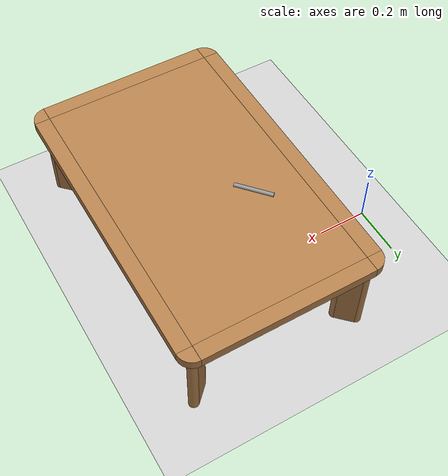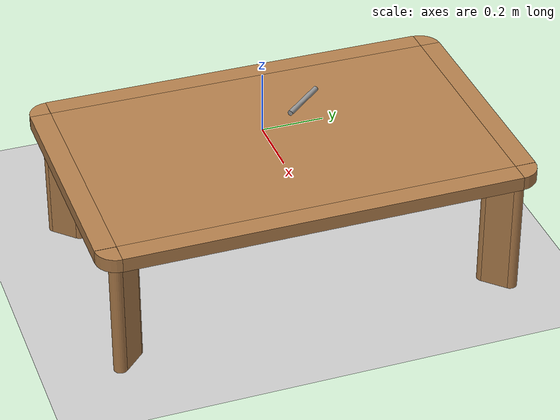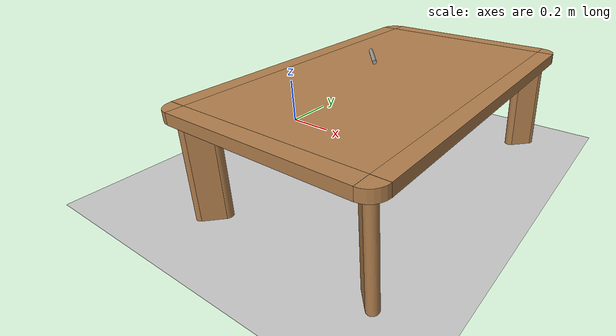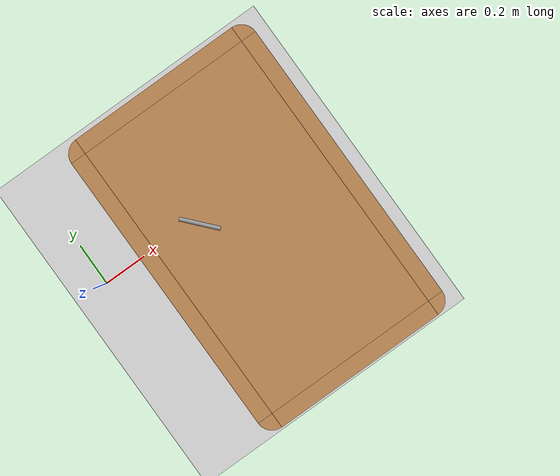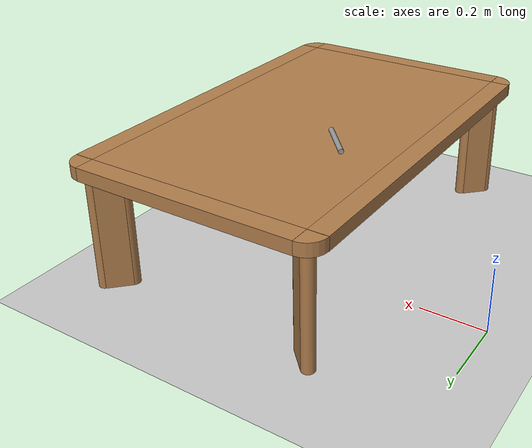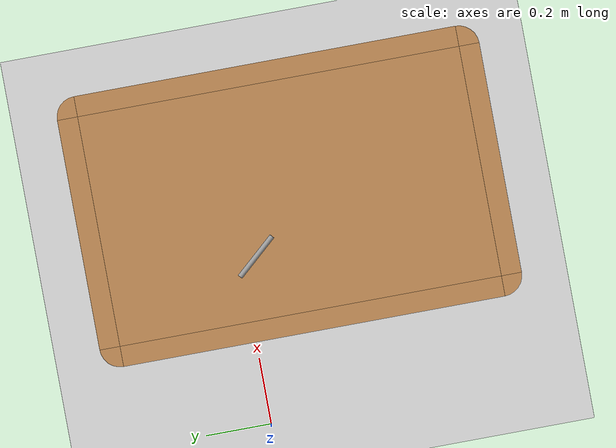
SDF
<sdf version="1.6">
 <world name="default">
  <light name="sun" type="directional">
   <pose>0 0 10 0 -0 0</pose>
   <diffuse>0.8 0.8 0.8 1</diffuse>
   <specular>0.2 0.2 0.2 1</specular>
   <attenuation>
    <range>1000</range>
    <constant>0.9</constant>
    <linear>0.01</linear>
    <quadratic>0.001</quadratic>
   </attenuation>
   <direction>-0.5 0.1 -0.9</direction>
  </light>
  <model name="ground_plane">
   <static>1</static>
   <link name="link">
    <collision name="collision">
     <geometry><plane><normal>0 0 1</normal><size>100 100</size></plane></geometry>
     <surface><friction><ode><mu>100</mu><mu2>50</mu2></ode></friction></surface>
    </collision>
    <visual name="visual">
     <cast_shadows>0</cast_shadows>
     <geometry><plane><normal>0 0 1</normal><size>100 100</size></plane></geometry>
     <material>
      <script><uri>file://media/materials/scripts/gazebo.material</uri><name>Gazebo/Grey</name></script>
     </material>
    </visual>
   </link>
  </model>
  <gravity>0 0 -9.8</gravity>
  <magnetic_field>6e-06 2.3e-05 -4.2e-05</magnetic_field>
  <atmosphere type="adiabatic"/>
  <physics name="default_physics" default="0" type="ode">
   <max_step_size>0.001</max_step_size>
   <real_time_factor>1</real_time_factor>
   <real_time_update_rate>1000</real_time_update_rate>
  </physics>
  <scene><ambient>0.4 0.4 0.4 1</ambient><background>0.7 0.7 0.7 1</background><shadows>1</shadows></scene>
  <spherical_coordinates>
   <surface_model>EARTH_WGS84</surface_model>
   <latitude_deg>0</latitude_deg>
   <longitude_deg>0</longitude_deg>
   <elevation>0</elevation>
   <heading_deg>0</heading_deg>
  </spherical_coordinates>
  <model name="kitchen_lowtable">
   <link name="link">
    <inertial>
     <mass>10</mass>
     <inertia><ixx>1</ixx><ixy>0</ixy><ixz>0</ixz><iyy>1</iyy><iyz>0</iyz><izz>1</izz></inertia>
    </inertial>
    <visual name="center_board">
     <pose>0 0 0.38 0 -0 0</pose>
     <geometry><box><size>0.68 1.13 0.04</size></box></geometry>
     <material>
      <script><uri>model://base_materials/wood/scripts/wood.material</uri><name>base_materials/wood</name></script>
     </material>
    </visual>
    <collision name="collision_center_board">
     <pose>0 0 0.38 0 -0 0</pose>
     <geometry><box><size>0.68 1.13 0.04</size></box></geometry>
    </collision>
    <visual name="front_board">
     <pose>0.37 0 0.38 0 -0 0</pose>
     <geometry><box><size>0.06 1.13 0.04</size></box></geometry>
     <material>
      <script><uri>model://base_materials/wood/scripts/wood.material</uri><name>base_materials/wood</name></script>
     </material>
    </visual>
    <collision name="collision_front_board">
     <pose>0.37 0 0.38 0 -0 0</pose>
     <geometry><box><size>0.06 1.13 0.04</size></box></geometry>
    </collision>
    <visual name="back_board">
     <pose>-0.37 0 0.38 0 -0 0</pose>
     <geometry><box><size>0.06 1.13 0.04</size></box></geometry>
     <material>
      <script><uri>model://base_materials/wood/scripts/wood.material</uri><name>base_materials/wood</name></script>
     </material>
    </visual>
    <collision name="collision_back_board">
     <pose>-0.37 0 0.38 0 -0 0</pose>
     <geometry><box><size>0.06 1.13 0.04</size></box></geometry>
    </collision>
    <visual name="right_board">
     <pose>0 0.595 0.38 0 -0 0</pose>
     <geometry><box><size>0.68 0.06 0.04</size></box></geometry>
     <material>
      <script><uri>model://base_materials/wood/scripts/wood.material</uri><name>base_materials/wood</name></script>
     </material>
    </visual>
    <collision name="collision_right_board">
     <pose>0 0.595 0.38 0 -0 0</pose>
     <geometry><box><size>0.68 0.06 0.04</size></box></geometry>
    </collision>
    <visual name="left_board">
     <pose>0 -0.595 0.38 0 -0 0</pose>
     <geometry><box><size>0.68 0.06 0.04</size></box></geometry>
     <material>
      <script><uri>model://base_materials/wood/scripts/wood.material</uri><name>base_materials/wood</name></script>
     </material>
    </visual>
    <collision name="collision_left_board">
     <pose>0 -0.595 0.38 0 -0 0</pose>
     <geometry><box><size>0.68 0.06 0.04</size></box></geometry>
    </collision>
    <visual name="front_right_corner_board">
     <pose>0.34 0.565 0.38 0 -0 0</pose>
     <geometry><cylinder><radius>0.06</radius><length>0.039</length></cylinder></geometry>
     <material>
      <script><uri>model://base_materials/wood/scripts/wood.material</uri><name>base_materials/wood</name></script>
     </material>
    </visual>
    <collision name="collision_front_right_corner_board">
     <pose>0.34 0.565 0.38 0 -0 0</pose>
     <geometry><cylinder><radius>0.06</radius><length>0.039</length></cylinder></geometry>
    </collision>
    <visual name="front_left_corner_board">
     <pose>0.34 -0.565 0.38 0 -0 0</pose>
     <geometry><cylinder><radius>0.06</radius><length>0.039</length></cylinder></geometry>
     <material>
      <script><uri>model://base_materials/wood/scripts/wood.material</uri><name>base_materials/wood</name></script>
     </material>
    </visual>
    <collision name="collision_front_left_corner_board">
     <pose>0.34 -0.565 0.38 0 -0 0</pose>
     <geometry><cylinder><radius>0.06</radius><length>0.039</length></cylinder></geometry>
    </collision>
    <visual name="front_back_right_corner_board">
     <pose>-0.34 0.565 0.38 0 -0 0</pose>
     <geometry><cylinder><radius>0.06</radius><length>0.039</length></cylinder></geometry>
     <material>
      <script><uri>model://base_materials/wood/scripts/wood.material</uri><name>base_materials/wood</name></script>
     </material>
    </visual>
    <collision name="collision_back_right_corner_board">
     <pose>-0.34 0.565 0.38 0 -0 0</pose>
     <geometry><cylinder><radius>0.06</radius><length>0.039</length></cylinder></geometry>
    </collision>
    <visual name="front_back_left_corner_board">
     <pose>-0.34 -0.565 0.38 0 -0 0</pose>
     <geometry><cylinder><radius>0.06</radius><length>0.039</length></cylinder></geometry>
     <material>
      <script><uri>model://base_materials/wood/scripts/wood.material</uri><name>base_materials/wood</name></script>
     </material>
    </visual>
    <collision name="collision_back_left_corner_board">
     <pose>-0.34 -0.565 0.38 0 -0 0</pose>
     <geometry><cylinder><radius>0.06</radius><length>0.039</length></cylinder></geometry>
    </collision>
    <visual name="front_left_corner_frame1">
     <pose>0.345858 -0.57086 0.18 0 -0 0</pose>
     <geometry><cylinder><radius>0.02</radius><length>0.36</length></cylinder></geometry>
     <material>
      <script><uri>model://base_materials/wood/scripts/wood.material</uri><name>base_materials/wood</name></script>
     </material>
    </visual>
    <collision name="collision_front_left_corner_frame1">
     <pose>0.345858 -0.57086 0.18 0 -0 0</pose>
     <geometry><cylinder><radius>0.02</radius><length>0.36</length></cylinder></geometry>
    </collision>
    <visual name="front_left_corner_frame2">
     <pose>0.317574 -0.54257 0.18 0 -0 0.7854</pose>
     <geometry><box><size>0.04 0.08 0.36</size></box></geometry>
     <material>
      <script><uri>model://base_materials/wood/scripts/wood.material</uri><name>base_materials/wood</name></script>
     </material>
    </visual>
    <collision name="collision_front_left_corner_frame2">
     <pose>0.317574 -0.54257 0.18 0 -0 0.7854</pose>
     <geometry><box><size>0.04 0.08 0.36</size></box></geometry>
    </collision>
    <visual name="front_left_corner_frame3">
     <pose>0.289289 -0.51429 0.18 0 -0 0</pose>
     <geometry><cylinder><radius>0.02</radius><length>0.36</length></cylinder></geometry>
     <material>
      <script><uri>model://base_materials/wood/scripts/wood.material</uri><name>base_materials/wood</name></script>
     </material>
    </visual>
    <collision name="collision_front_left_corner_frame3">
     <pose>0.289289 -0.51429 0.18 0 -0 0</pose>
     <geometry><cylinder><radius>0.02</radius><length>0.36</length></cylinder></geometry>
    </collision>
    <visual name="front_right_corner_frame1">
     <pose>0.345858 0.57086 0.18 0 -0 0</pose>
     <geometry><cylinder><radius>0.02</radius><length>0.36</length></cylinder></geometry>
     <material>
      <script><uri>model://base_materials/wood/scripts/wood.material</uri><name>base_materials/wood</name></script>
     </material>
    </visual>
    <collision name="collision_front_right_corner_frame1">
     <pose>0.345858 0.57086 0.18 0 -0 0</pose>
     <geometry><cylinder><radius>0.02</radius><length>0.36</length></cylinder></geometry>
    </collision>
    <visual name="front_right_corner_frame2">
     <pose>0.317574 0.54257 0.18 0 0 -0.7854</pose>
     <geometry><box><size>0.04 0.08 0.36</size></box></geometry>
     <material>
      <script><uri>model://base_materials/wood/scripts/wood.material</uri><name>base_materials/wood</name></script>
     </material>
    </visual>
    <collision name="collision_front_right_corner_frame2">
     <pose>0.317574 0.54257 0.18 0 0 -0.7854</pose>
     <geometry><box><size>0.04 0.08 0.36</size></box></geometry>
    </collision>
    <visual name="front_right_corner_frame3">
     <pose>0.289289 0.51429 0.18 0 -0 0</pose>
     <geometry><cylinder><radius>0.02</radius><length>0.36</length></cylinder></geometry>
     <material>
      <script><uri>model://base_materials/wood/scripts/wood.material</uri><name>base_materials/wood</name></script>
     </material>
    </visual>
    <collision name="collision_front_right_corner_frame3">
     <pose>0.289289 0.51429 0.18 0 -0 0</pose>
     <geometry><cylinder><radius>0.02</radius><length>0.36</length></cylinder></geometry>
    </collision>
    <visual name="back_left_corner_frame1">
     <pose>-0.345858 -0.57086 0.18 0 -0 0</pose>
     <geometry><cylinder><radius>0.02</radius><length>0.36</length></cylinder></geometry>
     <material>
      <script><uri>model://base_materials/wood/scripts/wood.material</uri><name>base_materials/wood</name></script>
     </material>
    </visual>
    <collision name="collision_back_left_corner_frame1">
     <pose>-0.345858 -0.57086 0.18 0 -0 0</pose>
     <geometry><cylinder><radius>0.02</radius><length>0.36</length></cylinder></geometry>
    </collision>
    <visual name="back_left_corner_frame2">
     <pose>-0.317574 -0.54257 0.18 0 0 -0.7854</pose>
     <geometry><box><size>0.04 0.08 0.36</size></box></geometry>
     <material>
      <script><uri>model://base_materials/wood/scripts/wood.material</uri><name>base_materials/wood</name></script>
     </material>
    </visual>
    <collision name="collision_back_left_corner_frame2">
     <pose>-0.317574 -0.54257 0.18 0 0 -0.7854</pose>
     <geometry><box><size>0.04 0.08 0.36</size></box></geometry>
    </collision>
    <visual name="back_left_corner_frame3">
     <pose>-0.289289 -0.51429 0.18 0 -0 0</pose>
     <geometry><cylinder><radius>0.02</radius><length>0.36</length></cylinder></geometry>
     <material>
      <script><uri>model://base_materials/wood/scripts/wood.material</uri><name>base_materials/wood</name></script>
     </material>
    </visual>
    <collision name="collision_back_left_corner_frame3">
     <pose>-0.289289 -0.51429 0.18 0 -0 0</pose>
     <geometry><cylinder><radius>0.02</radius><length>0.36</length></cylinder></geometry>
    </collision>
    <visual name="back_right_corner_frame1">
     <pose>-0.345858 0.57086 0.18 0 -0 0</pose>
     <geometry><cylinder><radius>0.02</radius><length>0.36</length></cylinder></geometry>
     <material>
      <script><uri>model://base_materials/wood/scripts/wood.material</uri><name>base_materials/wood</name></script>
     </material>
    </visual>
    <collision name="collision_back_right_corner_frame1">
     <pose>-0.345858 0.57086 0.18 0 -0 0</pose>
     <geometry><cylinder><radius>0.02</radius><length>0.36</length></cylinder></geometry>
    </collision>
    <visual name="back_right_corner_frame2">
     <pose>-0.317574 0.54257 0.18 0 -0 0.7854</pose>
     <geometry><box><size>0.04 0.08 0.36</size></box></geometry>
     <material>
      <script><uri>model://base_materials/wood/scripts/wood.material</uri><name>base_materials/wood</name></script>
     </material>
    </visual>
    <collision name="collision_back_right_corner_frame2">
     <pose>-0.317574 0.54257 0.18 0 -0 0.7854</pose>
     <geometry><box><size>0.04 0.08 0.36</size></box></geometry>
    </collision>
    <visual name="back_right_corner_frame3">
     <pose>-0.289289 0.51429 0.18 0 -0 0</pose>
     <geometry><cylinder><radius>0.02</radius><length>0.36</length></cylinder></geometry>
     <material>
      <script><uri>model://base_materials/wood/scripts/wood.material</uri><name>base_materials/wood</name></script>
     </material>
    </visual>
    <collision name="collision_back_right_corner_frame3">
     <pose>-0.289289 0.51429 0.18 0 -0 0</pose>
     <geometry><cylinder><radius>0.02</radius><length>0.36</length></cylinder></geometry>
    </collision>
    <velocity_decay><linear>0</linear><angular>0</angular></velocity_decay>
   </link>
   <static>1</static>
   <pose>0.660491 -0.176947 0.010802 0 -0 0</pose>
  </model>
  <model name="unit_cylinder">
   <pose>0.505521 -0.049717 0.418522 1.5708 -0.001119 0.722885</pose>
   <link name="link">
    <inertial>
     <mass>1</mass>
     <inertia><ixx>0.145833</ixx><ixy>0</ixy><ixz>0</ixz><iyy>0.145833</iyy><iyz>0</iyz><izz>0.125</izz></inertia>
    </inertial>
    <collision name="collision">
     <geometry><cylinder><radius>0.0077205</radius><length>0.15018</length></cylinder></geometry>
    </collision>
    <visual name="visual">
     <geometry><cylinder><radius>0.0077205</radius><length>0.15018</length></cylinder></geometry>
     <material>
      <script><name>Gazebo/Grey</name><uri>file://media/materials/scripts/gazebo.material</uri></script>
     </material>
    </visual>
   </link>
  </model>
  <light name="user_point_light_0" type="point">
   <pose>1.47002 0.308011 1 0 -0 0</pose>
   <diffuse>0.5 0.5 0.5 1</diffuse>
   <specular>0.1 0.1 0.1 1</specular>
   <attenuation>
    <range>20</range>
    <constant>0.5</constant>
    <linear>0.01</linear>
    <quadratic>0.001</quadratic>
   </attenuation>
   <cast_shadows>0</cast_shadows>
   <direction>0 0 -1</direction>
  </light>
 </world>
</sdf>
